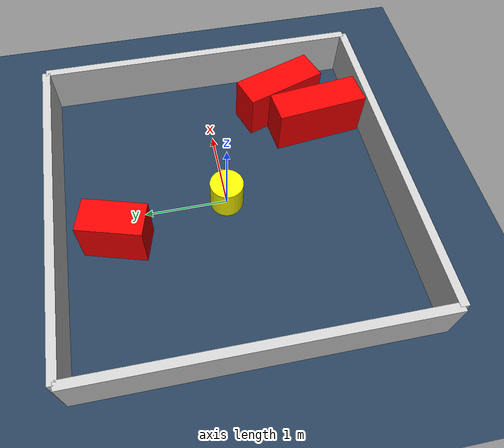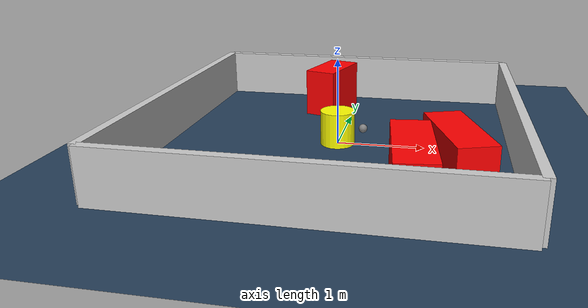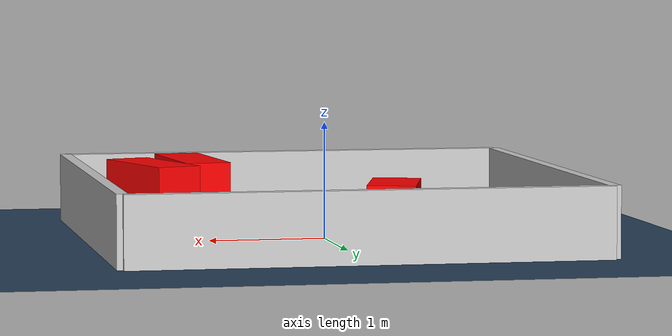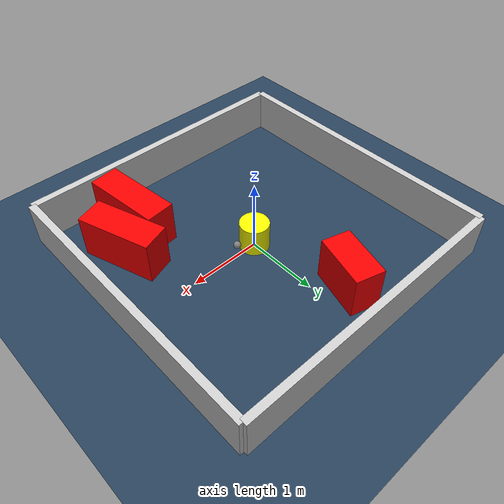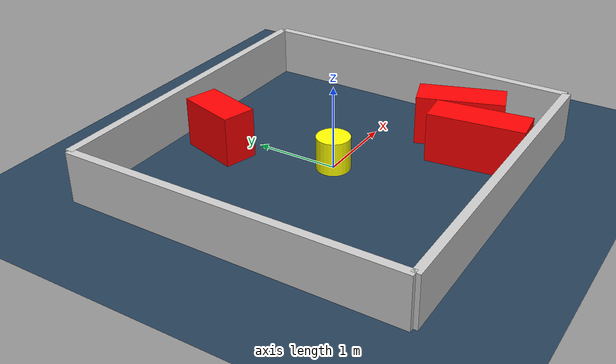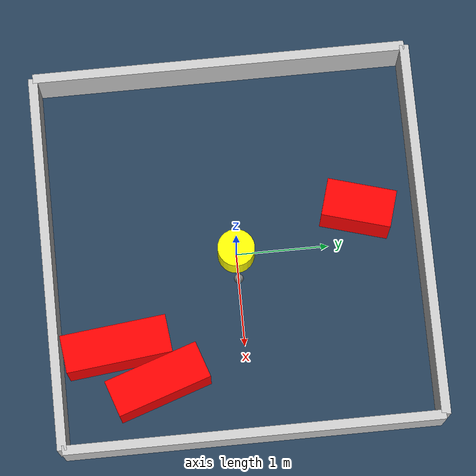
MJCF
<?xml version="1.0" ?>
<mujoco model="generated_environment">
  <option timestep="0.01" integrator="RK4" cone="elliptic"/>
  <default>
    <geom density="1"/>
  </default>
  <asset>
    <texture builtin="gradient" height="3072" rgb1="0.3 0.5 0.7" rgb2="0 0 0" type="skybox" width="512"/>
    <texture builtin="checker" height="300" mark="edge" markrgb="0.8 0.8 0.8" name="groundplane" rgb1="0.2 0.3 0.4" rgb2="0.1 0.2 0.3" type="2d" width="300"/>
    <material name="groundplane" reflectance="0.2" texrepeat="5 5" texture="groundplane" texuniform="true"/>
    <material name="robot" rgba="0.0 1.0 0.0 1"/>
  </asset>
  <worldbody>
    <light dir="0 0 -1" directional="true" pos="0 0 1.5"/>
    <geom condim="4" friction="1.0 0.005 0.001" material="groundplane" name="floor" size="0 0 0.05" type="plane"/>
    <body name="walls">
      <geom name="wall_1" condim="4" pos="-2.0 0.0 0.3" rgba="0.800000011920929 0.800000011920929 0.800000011920929 1.0" size="0.05 2.0 0.3" type="box"/>
      <geom name="wall_2" condim="4" pos="2.0 0.0 0.3" rgba="0.800000011920929 0.800000011920929 0.800000011920929 1.0" size="0.05 2.0 0.3" type="box"/>
      <geom name="wall_3" condim="4" pos="0.0 -2.0 0.3" rgba="0.800000011920929 0.800000011920929 0.800000011920929 1.0" size="2.0 0.05 0.3" type="box"/>
      <geom name="wall_4" condim="4" pos="0.0 2.0 0.3" rgba="0.800000011920929 0.800000011920929 0.800000011920929 1.0" size="2.0 0.05 0.3" type="box"/>
    </body>
    <body name="robot">
      <joint name="joint_x" type="slide" pos="0 0 0" axis="1 0 0"/>
      <joint name="joint_y" type="slide" pos="0 0 0" axis="0 1 0"/>
      <geom name="robot" type="sphere" pos="0.3 0.0 0.2" size="0.05" mass="5." friction="1.0 0.005 0.0001" condim="4" rgba="0.5 0.5 0.5 1.0"/>
      <site name="sensor_ball"/>
    </body>
    <body name="obstacle_movable_1">
      <geom name="obstacle_movable_1" condim="4" pos="0.0 0.0 0.2" euler="0 0 0.0" friction="1.0 0.005 0.001" rgba="1.0 1.0 0.0 1.0" size="0.2 0.2 0.0" type="cylinder" mass="0.1"/>
      <joint type="free"/>
    </body>
    <body name="obstacle_2_static">
      <geom name="obstacle_2_static" condim="4" pos="-0.31877645277115674 1.3378365472183031 0.3" euler="0 0 253.9587025335978" friction="1.0 0.005 0.001" rgba="1 0 0 1" size="0.3708344392015679 0.2 0.3" type="box"/>
    </body>
    <body name="obstacle_3_static">
      <geom name="obstacle_3_static" condim="4" pos="1.3503600368081758 -0.9494674820346388 0.3" euler="0 0 288.6882066766075" friction="1.0 0.005 0.001" rgba="1 0 0 1" size="0.517228498131065 0.2 0.3" type="box"/>
    </body>
    <body name="obstacle_4_static">
      <geom name="obstacle_4_static" condim="4" pos="0.9397859327677511 -1.3502304986831177 0.3" euler="0 0 96.4555144528795" friction="1.0 0.005 0.001" rgba="1 0 0 1" size="0.5633413196869409 0.2 0.3" type="box"/>
    </body>
  </worldbody>
  <actuator>
    <motor name="actuator_x" joint="joint_x" gear="1" ctrlrange="-1 1"/>
    <motor name="actuator_y" joint="joint_y" gear="1" ctrlrange="-1 1"/>
  </actuator>
</mujoco>
